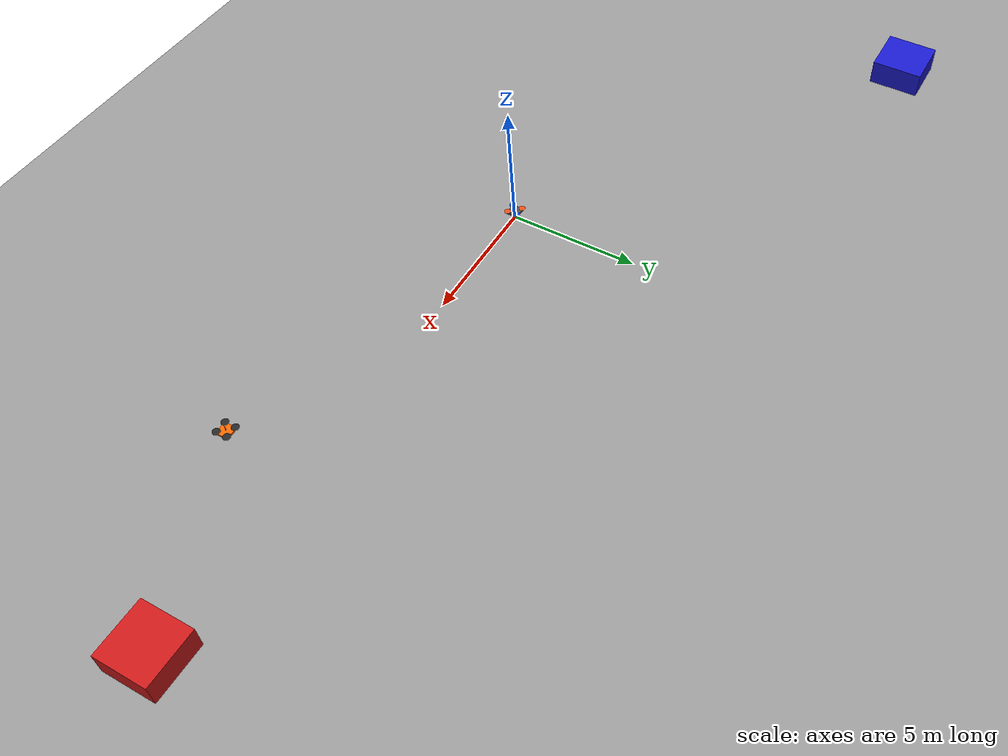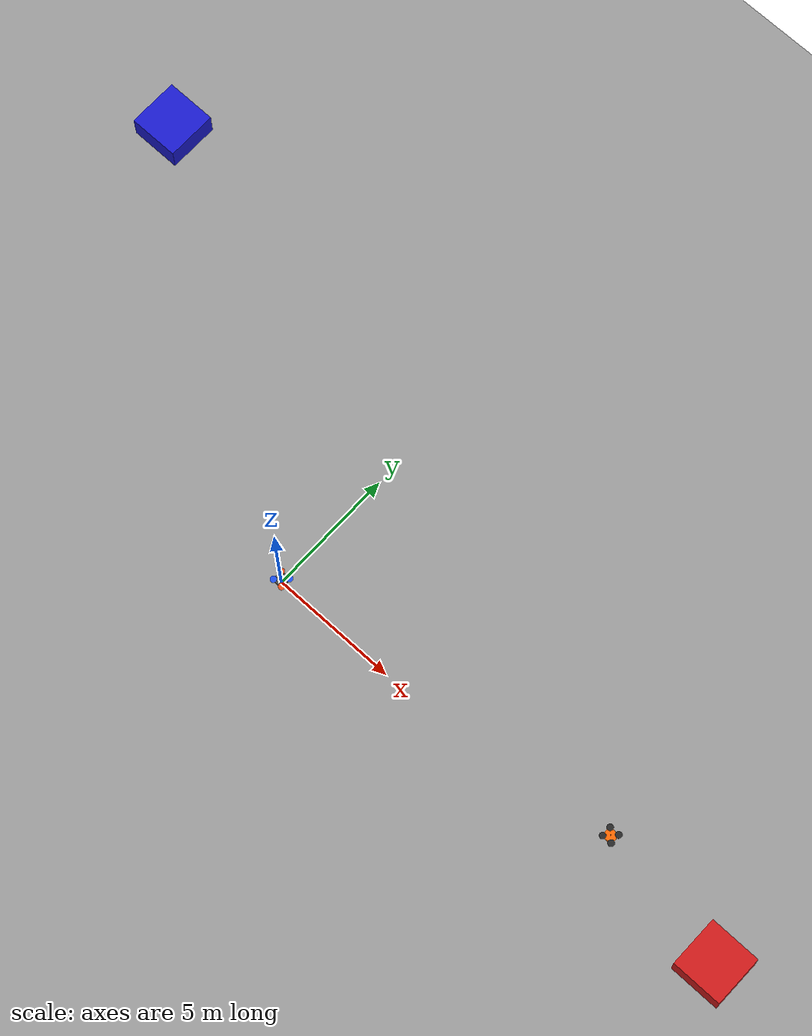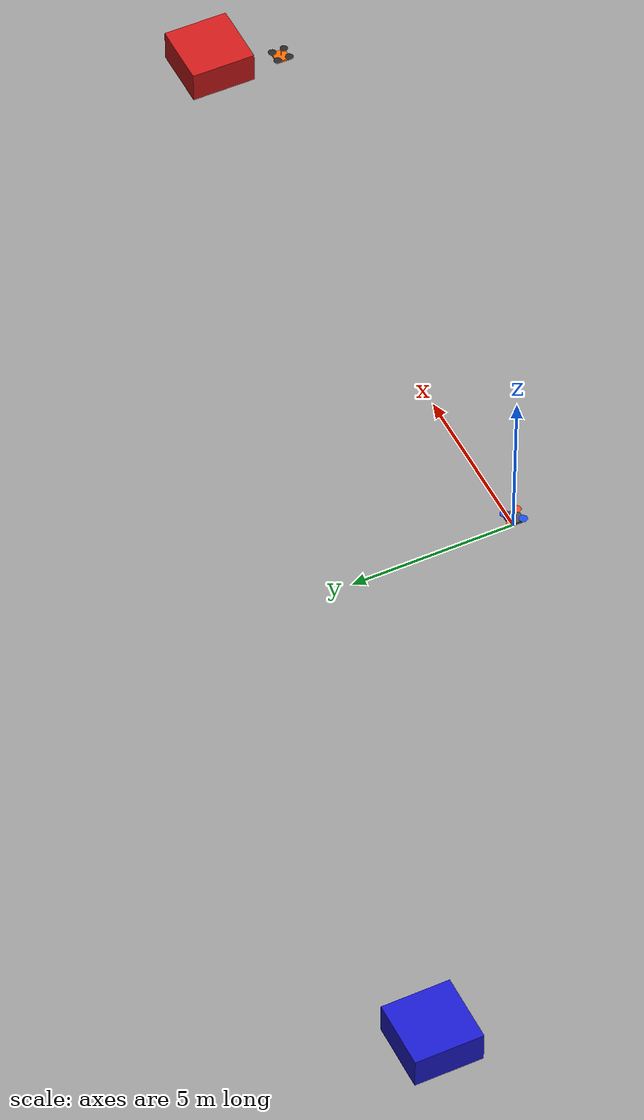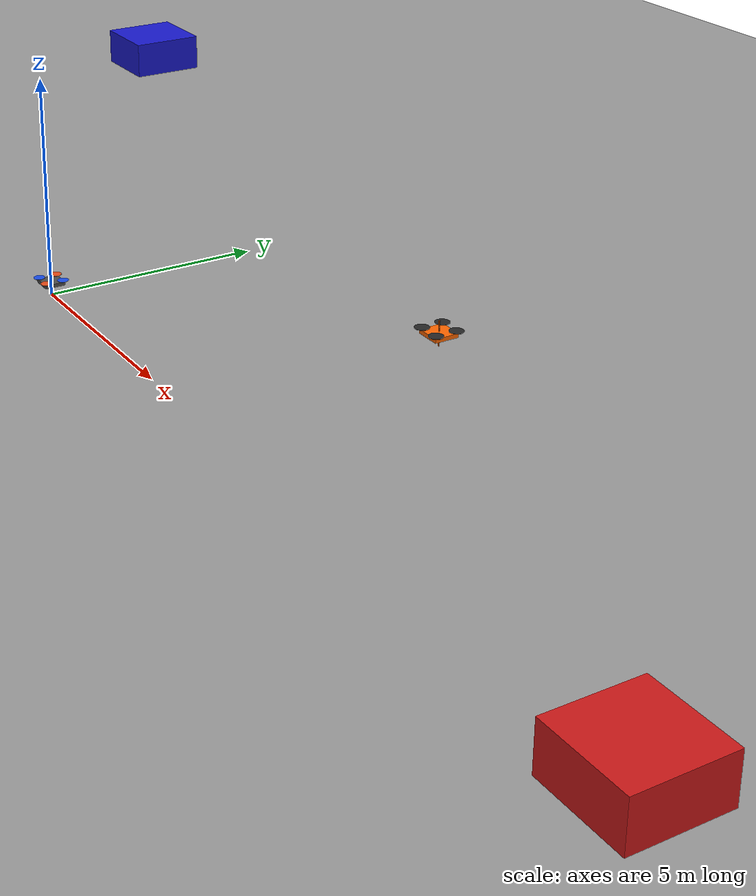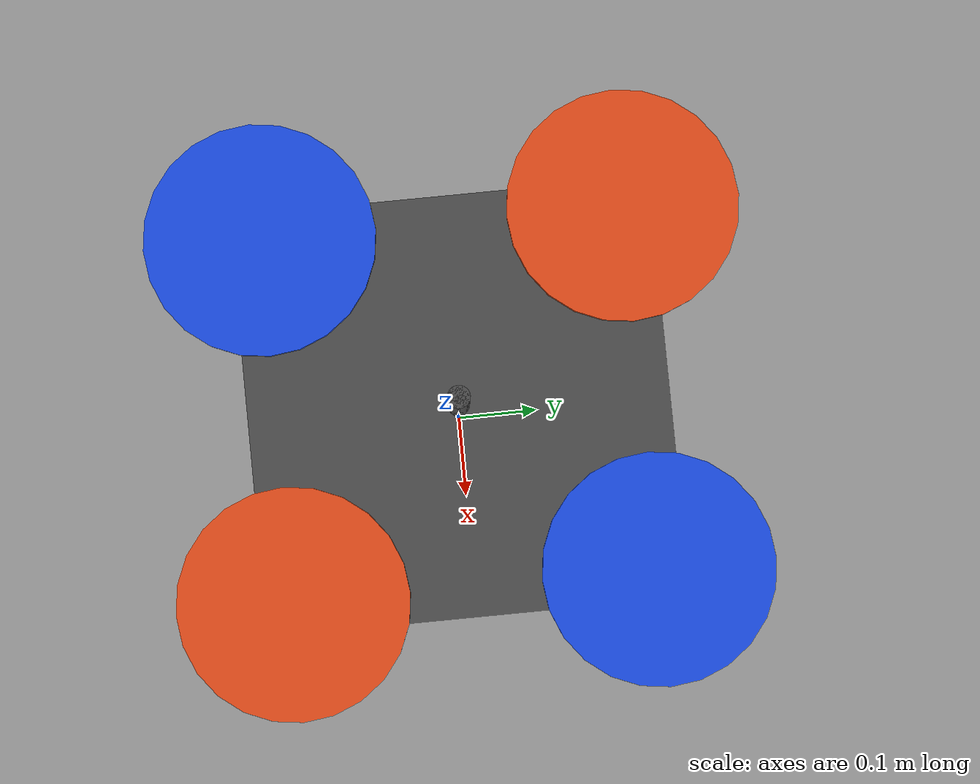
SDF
<?xml version="1.0" ?>
<sdf version="1.9">
  <world name="drone_tracking">

    <!-- ── Plugins (Harmonic requires explicit plugin declarations) ───────── -->
    <plugin filename="gz-sim-physics-system"
            name="gz::sim::systems::Physics"/>
    <plugin filename="gz-sim-sensors-system"
            name="gz::sim::systems::Sensors">
      <render_engine>ogre2</render_engine>
    </plugin>
    <plugin filename="gz-sim-scene-broadcaster-system"
            name="gz::sim::systems::SceneBroadcaster"/>
    <plugin filename="gz-sim-user-commands-system"
            name="gz::sim::systems::UserCommands"/>

    <!-- ── Physics ──────────────────────────────────────────────────────── -->
    <physics name="default_physics" default="true" type="ode">
      <max_step_size>0.002</max_step_size>
      <real_time_factor>1.0</real_time_factor>
      <real_time_update_rate>500</real_time_update_rate>
    </physics>

    <!-- ── Lighting ─────────────────────────────────────────────────────── -->
    <light name="sun" type="directional">
      <cast_shadows>true</cast_shadows>
      <pose>0 0 100 0 -0 0</pose>
      <diffuse>0.9 0.9 0.9 1</diffuse>
      <specular>0.2 0.2 0.2 1</specular>
      <direction>-0.5 0.1 -0.9</direction>
      <attenuation>
        <range>1000</range>
        <constant>0.9</constant>
        <linear>0.01</linear>
        <quadratic>0.001</quadratic>
      </attenuation>
    </light>

    <!-- ── Ground Plane ─────────────────────────────────────────────────── -->
    <model name="ground_plane">
      <static>true</static>
      <link name="link">
        <collision name="collision">
          <geometry>
            <plane><normal>0 0 1</normal><size>500 500</size></plane>
          </geometry>
        </collision>
        <visual name="visual">
          <geometry>
            <plane><normal>0 0 1</normal><size>500 500</size></plane>
          </geometry>
          <material>
            <ambient>0.4 0.4 0.4 1</ambient>
            <diffuse>0.6 0.6 0.6 1</diffuse>
          </material>
        </visual>
      </link>
    </model>

    <!-- ── Landmark boxes ───────────────────────────────────────────────── -->
    <model name="box_red">
      <static>true</static>
      <pose>20 0 0.5 0 0 0</pose>
      <link name="link">
        <collision name="col"><geometry><box><size>2 2 1</size></box></geometry></collision>
        <visual name="vis">
          <geometry><box><size>2 2 1</size></box></geometry>
          <material><ambient>0.8 0.1 0.1 1</ambient><diffuse>0.8 0.1 0.1 1</diffuse></material>
        </visual>
      </link>
    </model>

    <model name="box_blue">
      <static>true</static>
      <pose>-15 10 0.5 0 0 0</pose>
      <link name="link">
        <collision name="col"><geometry><box><size>2 2 1</size></box></geometry></collision>
        <visual name="vis">
          <geometry><box><size>2 2 1</size></box></geometry>
          <material><ambient>0.1 0.1 0.8 1</ambient><diffuse>0.1 0.1 0.8 1</diffuse></material>
        </visual>
      </link>
    </model>

    <model name="tracker_drone">
      <pose>0 0 0.3 0 0 0</pose>

      <link name="base_link">
        <inertial>
          <mass>1.5</mass>
          <inertia>
            <ixx>0.029125</ixx><ixy>0</ixy><ixz>0</ixz>
            <iyy>0.029125</iyy><iyz>0</iyz><izz>0.055225</izz>
          </inertia>
        </inertial>

        <collision name="body_col">
          <geometry><box><size>0.47 0.47 0.11</size></box></geometry>
        </collision>

        <visual name="body_vis">
          <geometry><box><size>0.47 0.47 0.08</size></box></geometry>
          <material>
            <ambient>0.2 0.2 0.2 1</ambient>
            <diffuse>0.3 0.3 0.3 1</diffuse>
          </material>
        </visual>

        <!-- Rotor arm visuals -->
        <visual name="arm_a">
          <pose>0 0 0 0 0 0.7854</pose>
          <geometry><cylinder><radius>0.012</radius><length>0.47</length></cylinder></geometry>
          <material><ambient>0.3 0.3 0.3 1</ambient></material>
        </visual>
        <visual name="arm_b">
          <pose>0 0 0 0 0 -0.7854</pose>
          <geometry><cylinder><radius>0.012</radius><length>0.47</length></cylinder></geometry>
          <material><ambient>0.3 0.3 0.3 1</ambient></material>
        </visual>

        <!-- ── IMU sensor ─────────────────────────────────────────────── -->
        <sensor name="imu_sensor" type="imu">
          <always_on>true</always_on>
          <update_rate>200</update_rate>
          <imu>
            <angular_velocity>
              <x><noise type="gaussian"><mean>0</mean><stddev>0.009</stddev></noise></x>
              <y><noise type="gaussian"><mean>0</mean><stddev>0.009</stddev></noise></y>
              <z><noise type="gaussian"><mean>0</mean><stddev>0.009</stddev></noise></z>
            </angular_velocity>
          </imu>
        </sensor>

        <!-- ── GPS sensor ─────────────────────────────────────────────── -->
        <sensor name="navsat" type="navsat">
          <always_on>true</always_on>
          <update_rate>10</update_rate>
        </sensor>

        <sensor name="front_camera" type="camera">
          <pose>0.05 0 0.03 0 0.2618 0</pose>
          <always_on>true</always_on>
          <update_rate>30</update_rate>
          <visualize>true</visualize>
          <topic>/tracker_drone/camera/image_raw</topic>
          <camera name="front_camera">
            <horizontal_fov>1.3962634</horizontal_fov>
            <image>
              <width>640</width>
              <height>480</height>
              <format>R8G8B8</format>
            </image>
            <clip><near>0.05</near><far>300</far></clip>
            <noise>
              <type>gaussian</type>
              <mean>0.0</mean>
              <stddev>0.005</stddev>
            </noise>
          </camera>
        </sensor>
      </link>

      <!-- Rotors (4, physics via ArduPilot plugin) -->
      <link name="rotor_0">
        <pose>0.2 0.2 0.075 0 0 0</pose>
        <inertial><mass>0.025</mass><inertia><ixx>9.75e-07</ixx><ixy>0</ixy><ixz>0</ixz><iyy>1.66704e-04</iyy><iyz>0</iyz><izz>1.66704e-04</izz></inertia></inertial>
        <visual name="v"><geometry><cylinder><radius>0.128</radius><length>0.008</length></cylinder></geometry><material><ambient>0.1 0.3 0.9 1</ambient></material></visual>
      </link>
      <joint name="rotor_0_joint" type="revolute">
        <parent>base_link</parent><child>rotor_0</child>
        <axis><xyz>0 0 1</xyz><limit><lower>-1e16</lower><upper>1e16</upper></limit></axis>
      </joint>

      <link name="rotor_1">
        <pose>-0.2 -0.2 0.075 0 0 0</pose>
        <inertial><mass>0.025</mass><inertia><ixx>9.75e-07</ixx><ixy>0</ixy><ixz>0</ixz><iyy>1.66704e-04</iyy><iyz>0</iyz><izz>1.66704e-04</izz></inertia></inertial>
        <visual name="v"><geometry><cylinder><radius>0.128</radius><length>0.008</length></cylinder></geometry><material><ambient>0.1 0.3 0.9 1</ambient></material></visual>
      </link>
      <joint name="rotor_1_joint" type="revolute">
        <parent>base_link</parent><child>rotor_1</child>
        <axis><xyz>0 0 1</xyz><limit><lower>-1e16</lower><upper>1e16</upper></limit></axis>
      </joint>

      <link name="rotor_2">
        <pose>0.2 -0.2 0.075 0 0 0</pose>
        <inertial><mass>0.025</mass><inertia><ixx>9.75e-07</ixx><ixy>0</ixy><ixz>0</ixz><iyy>1.66704e-04</iyy><iyz>0</iyz><izz>1.66704e-04</izz></inertia></inertial>
        <visual name="v"><geometry><cylinder><radius>0.128</radius><length>0.008</length></cylinder></geometry><material><ambient>0.9 0.3 0.1 1</ambient></material></visual>
      </link>
      <joint name="rotor_2_joint" type="revolute">
        <parent>base_link</parent><child>rotor_2</child>
        <axis><xyz>0 0 1</xyz><limit><lower>-1e16</lower><upper>1e16</upper></limit></axis>
      </joint>

      <link name="rotor_3">
        <pose>-0.2 0.2 0.075 0 0 0</pose>
        <inertial><mass>0.025</mass><inertia><ixx>9.75e-07</ixx><ixy>0</ixy><ixz>0</ixz><iyy>1.66704e-04</iyy><iyz>0</iyz><izz>1.66704e-04</izz></inertia></inertial>
        <visual name="v"><geometry><cylinder><radius>0.128</radius><length>0.008</length></cylinder></geometry><material><ambient>0.9 0.3 0.1 1</ambient></material></visual>
      </link>
      <joint name="rotor_3_joint" type="revolute">
        <parent>base_link</parent><child>rotor_3</child>
        <axis><xyz>0 0 1</xyz><limit><lower>-1e16</lower><upper>1e16</upper></limit></axis>
      </joint>

      <!-- ArduPilot SITL plugin — instance 0 -->
      <plugin filename="libArduPilotPlugin.so" name="ArduPilotPlugin">
        <fdm_addr>127.0.0.1</fdm_addr>
        <fdm_port_in>9002</fdm_port_in>
        <fdm_port_out>9003</fdm_port_out>
        <connectionTimeoutMaxCount>5</connectionTimeoutMaxCount>
        <modelXYZToAirplaneXForwardZDown>0 0 0 3.141593 0 0</modelXYZToAirplaneXForwardZDown>
        <gazeboXYZToNED>0 0 0 3.141593 0 0</gazeboXYZToNED>
        <imuName>imu_sensor</imuName>
        <control channel="0"><jointName>rotor_0_joint</jointName><useForce>1</useForce><multiplier>838</multiplier><offset>-0.01</offset><servo_min>1000</servo_min><servo_max>2000</servo_max><type>VELOCITY</type><p_gain>0.20</p_gain><i_gain>0</i_gain><d_gain>0</d_gain><i_max>0</i_max><i_min>0</i_min><cmd_max>2.5</cmd_max><cmd_min>-2.5</cmd_min></control>
        <control channel="1"><jointName>rotor_1_joint</jointName><useForce>1</useForce><multiplier>838</multiplier><offset>-0.01</offset><servo_min>1000</servo_min><servo_max>2000</servo_max><type>VELOCITY</type><p_gain>0.20</p_gain><i_gain>0</i_gain><d_gain>0</d_gain><i_max>0</i_max><i_min>0</i_min><cmd_max>2.5</cmd_max><cmd_min>-2.5</cmd_min></control>
        <control channel="2"><jointName>rotor_2_joint</jointName><useForce>1</useForce><multiplier>-838</multiplier><offset>-0.01</offset><servo_min>1000</servo_min><servo_max>2000</servo_max><type>VELOCITY</type><p_gain>0.20</p_gain><i_gain>0</i_gain><d_gain>0</d_gain><i_max>0</i_max><i_min>0</i_min><cmd_max>2.5</cmd_max><cmd_min>-2.5</cmd_min></control>
        <control channel="3"><jointName>rotor_3_joint</jointName><useForce>1</useForce><multiplier>-838</multiplier><offset>-0.01</offset><servo_min>1000</servo_min><servo_max>2000</servo_max><type>VELOCITY</type><p_gain>0.20</p_gain><i_gain>0</i_gain><d_gain>0</d_gain><i_max>0</i_max><i_min>0</i_min><cmd_max>2.5</cmd_max><cmd_min>-2.5</cmd_min></control>
      </plugin>
    </model>

    <!-- ── Target Drone (orange, SITL instance 1) ───────────────────────── -->
    <model name="target_drone">
      <pose>15 0 5 0 0 3.14159</pose>

      <link name="base_link">
        <inertial>
          <mass>1.2</mass>
          <inertia><ixx>0.022</ixx><ixy>0</ixy><ixz>0</ixz><iyy>0.022</iyy><iyz>0</iyz><izz>0.042</izz></inertia>
        </inertial>
        <collision name="body_col">
          <geometry><box><size>0.42 0.42 0.10</size></box></geometry>
        </collision>
        <!-- Bright orange body — visually distinct for YOLO detection -->
        <visual name="body_vis">
          <geometry><box><size>0.42 0.42 0.07</size></box></geometry>
          <material>
            <ambient>1.0 0.4 0.0 1</ambient>
            <diffuse>1.0 0.4 0.0 1</diffuse>
            <emissive>0.15 0.05 0.0 1</emissive>
          </material>
        </visual>
        <visual name="arm_a">
          <pose>0 0 0 0 0 0.7854</pose>
          <geometry><cylinder><radius>0.011</radius><length>0.42</length></cylinder></geometry>
          <material><ambient>0.8 0.3 0.0 1</ambient></material>
        </visual>
        <visual name="arm_b">
          <pose>0 0 0 0 0 -0.7854</pose>
          <geometry><cylinder><radius>0.011</radius><length>0.42</length></cylinder></geometry>
          <material><ambient>0.8 0.3 0.0 1</ambient></material>
        </visual>

        <sensor name="imu_sensor" type="imu">
          <always_on>true</always_on><update_rate>200</update_rate>
        </sensor>
        <sensor name="navsat" type="navsat">
          <always_on>true</always_on><update_rate>10</update_rate>
        </sensor>
      </link>

      <link name="rotor_0"><pose>0.185 0.185 0.07 0 0 0</pose><inertial><mass>0.02</mass><inertia><ixx>8e-07</ixx><ixy>0</ixy><ixz>0</ixz><iyy>1.5e-04</iyy><iyz>0</iyz><izz>1.5e-04</izz></inertia></inertial><visual name="v"><geometry><cylinder><radius>0.12</radius><length>0.007</length></cylinder></geometry><material><ambient>0.15 0.15 0.15 1</ambient></material></visual></link>
      <joint name="r0j" type="revolute"><parent>base_link</parent><child>rotor_0</child><axis><xyz>0 0 1</xyz><limit><lower>-1e16</lower><upper>1e16</upper></limit></axis></joint>
      <link name="rotor_1"><pose>-0.185 -0.185 0.07 0 0 0</pose><inertial><mass>0.02</mass><inertia><ixx>8e-07</ixx><ixy>0</ixy><ixz>0</ixz><iyy>1.5e-04</iyy><iyz>0</iyz><izz>1.5e-04</izz></inertia></inertial><visual name="v"><geometry><cylinder><radius>0.12</radius><length>0.007</length></cylinder></geometry><material><ambient>0.15 0.15 0.15 1</ambient></material></visual></link>
      <joint name="r1j" type="revolute"><parent>base_link</parent><child>rotor_1</child><axis><xyz>0 0 1</xyz><limit><lower>-1e16</lower><upper>1e16</upper></limit></axis></joint>
      <link name="rotor_2"><pose>0.185 -0.185 0.07 0 0 0</pose><inertial><mass>0.02</mass><inertia><ixx>8e-07</ixx><ixy>0</ixy><ixz>0</ixz><iyy>1.5e-04</iyy><iyz>0</iyz><izz>1.5e-04</izz></inertia></inertial><visual name="v"><geometry><cylinder><radius>0.12</radius><length>0.007</length></cylinder></geometry><material><ambient>0.15 0.15 0.15 1</ambient></material></visual></link>
      <joint name="r2j" type="revolute"><parent>base_link</parent><child>rotor_2</child><axis><xyz>0 0 1</xyz><limit><lower>-1e16</lower><upper>1e16</upper></limit></axis></joint>
      <link name="rotor_3"><pose>-0.185 0.185 0.07 0 0 0</pose><inertial><mass>0.02</mass><inertia><ixx>8e-07</ixx><ixy>0</ixy><ixz>0</ixz><iyy>1.5e-04</iyy><iyz>0</iyz><izz>1.5e-04</izz></inertia></inertial><visual name="v"><geometry><cylinder><radius>0.12</radius><length>0.007</length></cylinder></geometry><material><ambient>0.15 0.15 0.15 1</ambient></material></visual></link>
      <joint name="r3j" type="revolute"><parent>base_link</parent><child>rotor_3</child><axis><xyz>0 0 1</xyz><limit><lower>-1e16</lower><upper>1e16</upper></limit></axis></joint>

      <!-- ArduPilot SITL plugin — instance 1 (FDM port 9012/9013) -->
      <plugin filename="libArduPilotPlugin.so" name="ArduPilotPlugin">
        <fdm_addr>127.0.0.1</fdm_addr>
        <fdm_port_in>9012</fdm_port_in>
        <fdm_port_out>9013</fdm_port_out>
        <connectionTimeoutMaxCount>5</connectionTimeoutMaxCount>
        <modelXYZToAirplaneXForwardZDown>0 0 0 3.141593 0 0</modelXYZToAirplaneXForwardZDown>
        <gazeboXYZToNED>0 0 0 3.141593 0 0</gazeboXYZToNED>
        <imuName>imu_sensor</imuName>
        <control channel="0"><jointName>r0j</jointName><useForce>1</useForce><multiplier>838</multiplier><offset>-0.01</offset><servo_min>1000</servo_min><servo_max>2000</servo_max><type>VELOCITY</type><p_gain>0.20</p_gain><i_gain>0</i_gain><d_gain>0</d_gain><i_max>0</i_max><i_min>0</i_min><cmd_max>2.5</cmd_max><cmd_min>-2.5</cmd_min></control>
        <control channel="1"><jointName>r1j</jointName><useForce>1</useForce><multiplier>838</multiplier><offset>-0.01</offset><servo_min>1000</servo_min><servo_max>2000</servo_max><type>VELOCITY</type><p_gain>0.20</p_gain><i_gain>0</i_gain><d_gain>0</d_gain><i_max>0</i_max><i_min>0</i_min><cmd_max>2.5</cmd_max><cmd_min>-2.5</cmd_min></control>
        <control channel="2"><jointName>r2j</jointName><useForce>1</useForce><multiplier>-838</multiplier><offset>-0.01</offset><servo_min>1000</servo_min><servo_max>2000</servo_max><type>VELOCITY</type><p_gain>0.20</p_gain><i_gain>0</i_gain><d_gain>0</d_gain><i_max>0</i_max><i_min>0</i_min><cmd_max>2.5</cmd_max><cmd_min>-2.5</cmd_min></control>
        <control channel="3"><jointName>r3j</jointName><useForce>1</useForce><multiplier>-838</multiplier><offset>-0.01</offset><servo_min>1000</servo_min><servo_max>2000</servo_max><type>VELOCITY</type><p_gain>0.20</p_gain><i_gain>0</i_gain><d_gain>0</d_gain><i_max>0</i_max><i_min>0</i_min><cmd_max>2.5</cmd_max><cmd_min>-2.5</cmd_min></control>
      </plugin>
    </model>

  </world>
</sdf>
